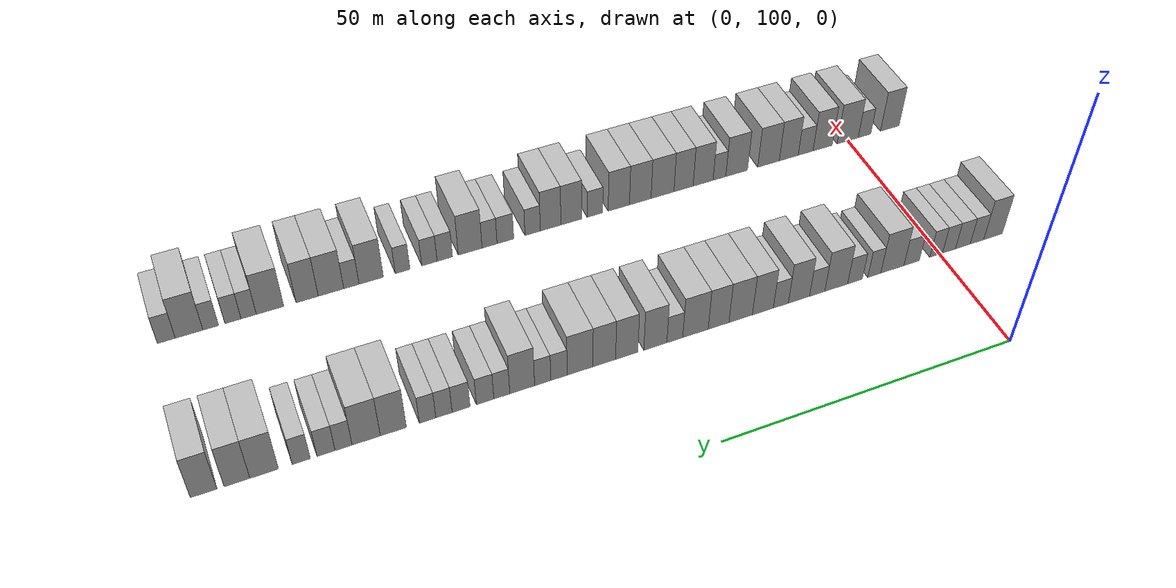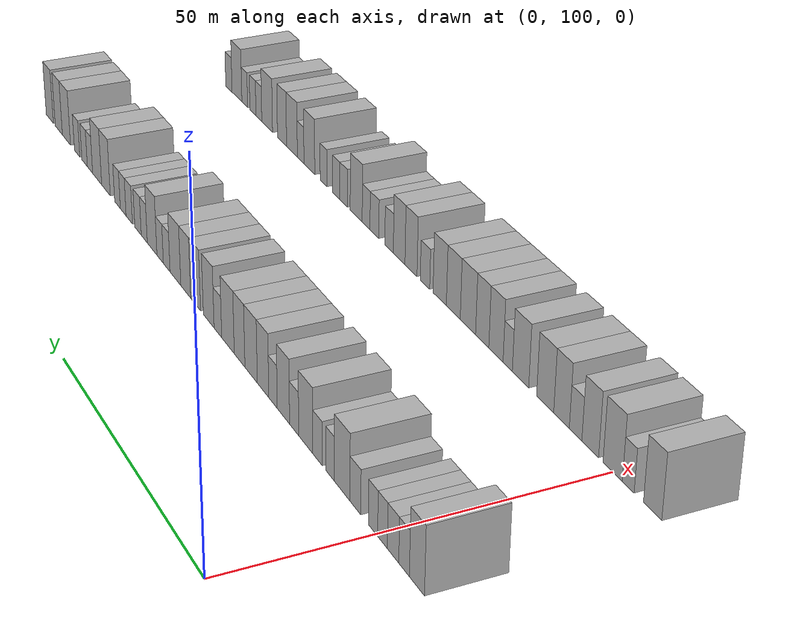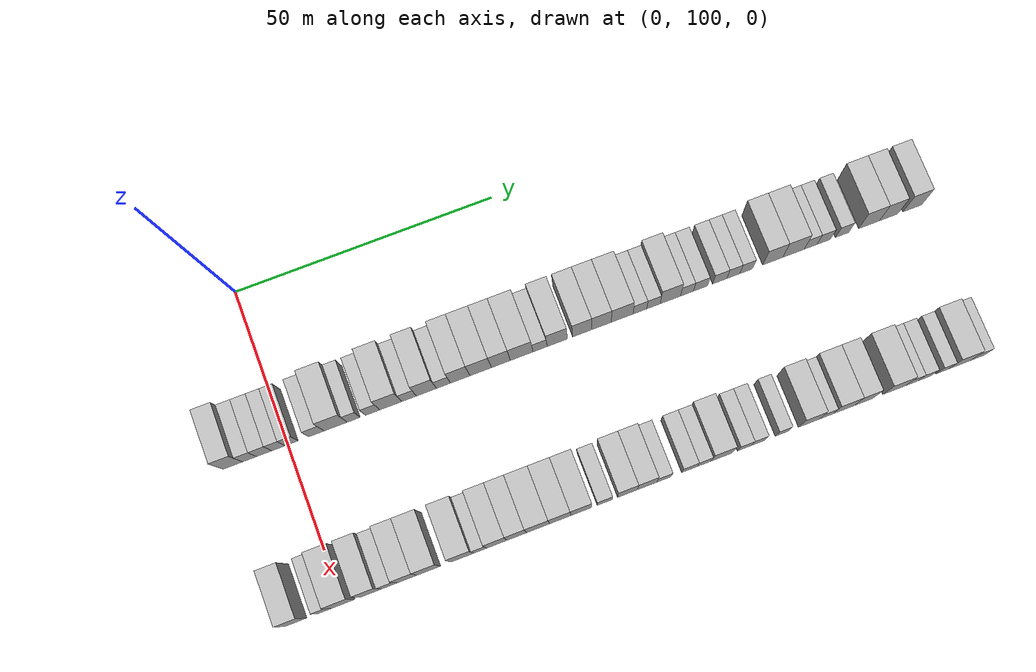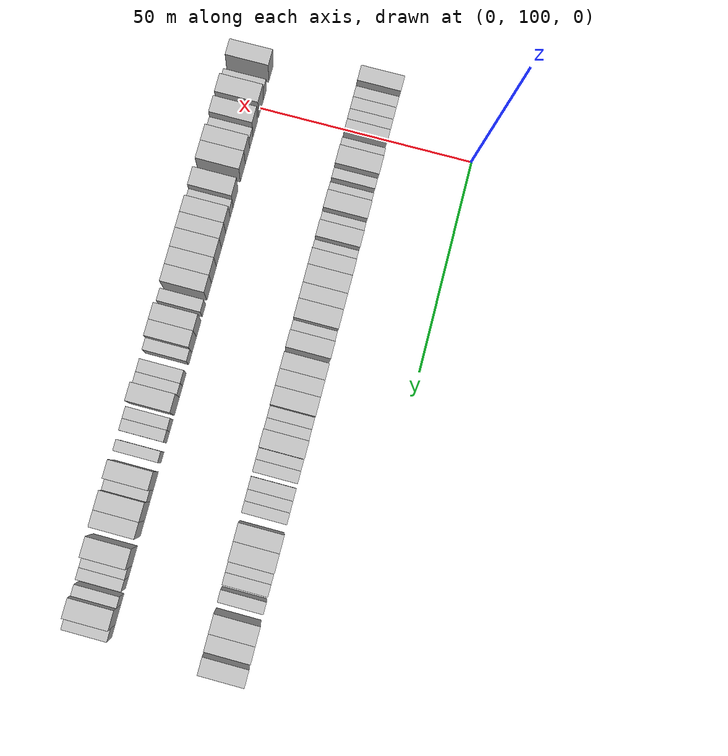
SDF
<sdf version="1.6">
 <world name="default">
  <model name="building_71">
   <static>1</static>
   <pose>25.0000 89.7215 0 0.000000 0.000000 0.000000</pose>
   <link name="link">
    <pose>0 0 4.50 0 0 0</pose>
    <collision name="collision"><geometry><box><size>10.0000 3.6614 9.0000</size></box></geometry></collision>
    <visual name="visual">
     <cast_shadows>0</cast_shadows>
     <geometry><box><size>10.0000 3.6614 9.0000</size></box></geometry>
     <material>
      <script>
       <uri>model://HANNAS_wall/materials/scripts</uri>
       <uri>model://HANNAS_wall/materials/textures</uri>
       <name>vrc/HANNAS_wall</name>
      </script>
     </material>
    </visual>
   </link>
  </model>
  <model name="building_72">
   <static>1</static>
   <pose>25.0000 92.8641 0 0.000000 0.000000 0.000000</pose>
   <link name="link">
    <pose>0 0 3.00 0 0 0</pose>
    <collision name="collision"><geometry><box><size>10.0000 2.6238 6.0000</size></box></geometry></collision>
    <visual name="visual">
     <cast_shadows>0</cast_shadows>
     <geometry><box><size>10.0000 2.6238 6.0000</size></box></geometry>
     <material>
      <script>
       <uri>model://HANNAS_wall/materials/scripts</uri>
       <uri>model://HANNAS_wall/materials/textures</uri>
       <name>vrc/HANNAS_wall</name>
      </script>
     </material>
    </visual>
   </link>
  </model>
  <model name="building_73">
   <static>1</static>
   <pose>25.0000 95.6105 0 0.000000 0.000000 0.000000</pose>
   <link name="link">
    <pose>0 0 3.00 0 0 0</pose>
    <collision name="collision"><geometry><box><size>10.0000 2.8688 6.0000</size></box></geometry></collision>
    <visual name="visual">
     <cast_shadows>0</cast_shadows>
     <geometry><box><size>10.0000 2.8688 6.0000</size></box></geometry>
     <material>
      <script>
       <uri>model://HANNAS_wall/materials/scripts</uri>
       <uri>model://HANNAS_wall/materials/textures</uri>
       <name>vrc/HANNAS_wall</name>
      </script>
     </material>
    </visual>
   </link>
  </model>
  <model name="building_74">
   <static>1</static>
   <pose>25.0000 98.2919 0 0.000000 0.000000 0.000000</pose>
   <link name="link">
    <pose>0 0 3.00 0 0 0</pose>
    <collision name="collision"><geometry><box><size>10.0000 2.4940 6.0000</size></box></geometry></collision>
    <visual name="visual">
     <cast_shadows>0</cast_shadows>
     <geometry><box><size>10.0000 2.4940 6.0000</size></box></geometry>
     <material>
      <script>
       <uri>model://HANNAS_wall/materials/scripts</uri>
       <uri>model://HANNAS_wall/materials/textures</uri>
       <name>vrc/HANNAS_wall</name>
      </script>
     </material>
    </visual>
   </link>
  </model>
  <model name="building_75">
   <static>1</static>
   <pose>25.0000 100.7658 0 0.000000 0.000000 0.000000</pose>
   <link name="link">
    <pose>0 0 3.00 0 0 0</pose>
    <collision name="collision"><geometry><box><size>10.0000 2.4537 6.0000</size></box></geometry></collision>
    <visual name="visual">
     <cast_shadows>0</cast_shadows>
     <geometry><box><size>10.0000 2.4537 6.0000</size></box></geometry>
     <material>
      <script>
       <uri>model://HANNAS_wall/materials/scripts</uri>
       <uri>model://HANNAS_wall/materials/textures</uri>
       <name>vrc/HANNAS_wall</name>
      </script>
     </material>
    </visual>
   </link>
  </model>
  <model name="building_76">
   <static>1</static>
   <pose>25.0000 105.4569 0 0.000000 0.000000 0.000000</pose>
   <link name="link">
    <pose>0 0 3.00 0 0 0</pose>
    <collision name="collision"><geometry><box><size>10.0000 2.9284 6.0000</size></box></geometry></collision>
    <visual name="visual">
     <cast_shadows>0</cast_shadows>
     <geometry><box><size>10.0000 2.9284 6.0000</size></box></geometry>
     <material>
      <script>
       <uri>model://HANNAS_wall/materials/scripts</uri>
       <uri>model://HANNAS_wall/materials/textures</uri>
       <name>vrc/HANNAS_wall</name>
      </script>
     </material>
    </visual>
   </link>
  </model>
  <model name="building_77">
   <static>1</static>
   <pose>25.0000 109.0968 0 0.000000 0.000000 0.000000</pose>
   <link name="link">
    <pose>0 0 4.50 0 0 0</pose>
    <collision name="collision"><geometry><box><size>10.0000 4.3515 9.0000</size></box></geometry></collision>
    <visual name="visual">
     <cast_shadows>0</cast_shadows>
     <geometry><box><size>10.0000 4.3515 9.0000</size></box></geometry>
     <material>
      <script>
       <uri>model://HANNAS_wall/materials/scripts</uri>
       <uri>model://HANNAS_wall/materials/textures</uri>
       <name>vrc/HANNAS_wall</name>
      </script>
     </material>
    </visual>
   </link>
  </model>
  <model name="building_78">
   <static>1</static>
   <pose>25.0000 112.4918 0 0.000000 0.000000 0.000000</pose>
   <link name="link">
    <pose>0 0 3.00 0 0 0</pose>
    <collision name="collision"><geometry><box><size>10.0000 2.4386 6.0000</size></box></geometry></collision>
    <visual name="visual">
     <cast_shadows>0</cast_shadows>
     <geometry><box><size>10.0000 2.4386 6.0000</size></box></geometry>
     <material>
      <script>
       <uri>model://HANNAS_wall/materials/scripts</uri>
       <uri>model://HANNAS_wall/materials/textures</uri>
       <name>vrc/HANNAS_wall</name>
      </script>
     </material>
    </visual>
   </link>
  </model>
  <model name="building_79">
   <static>1</static>
   <pose>25.0000 116.0793 0 0.000000 0.000000 0.000000</pose>
   <link name="link">
    <pose>0 0 3.00 0 0 0</pose>
    <collision name="collision"><geometry><box><size>10.0000 2.7364 6.0000</size></box></geometry></collision>
    <visual name="visual">
     <cast_shadows>0</cast_shadows>
     <geometry><box><size>10.0000 2.7364 6.0000</size></box></geometry>
     <material>
      <script>
       <uri>model://HANNAS_wall/materials/scripts</uri>
       <uri>model://HANNAS_wall/materials/textures</uri>
       <name>vrc/HANNAS_wall</name>
      </script>
     </material>
    </visual>
   </link>
  </model>
  <model name="building_80">
   <static>1</static>
   <pose>25.0000 119.5426 0 0.000000 0.000000 0.000000</pose>
   <link name="link">
    <pose>0 0 4.50 0 0 0</pose>
    <collision name="collision"><geometry><box><size>10.0000 4.1902 9.0000</size></box></geometry></collision>
    <visual name="visual">
     <cast_shadows>0</cast_shadows>
     <geometry><box><size>10.0000 4.1902 9.0000</size></box></geometry>
     <material>
      <script>
       <uri>model://HANNAS_wall/materials/scripts</uri>
       <uri>model://HANNAS_wall/materials/textures</uri>
       <name>vrc/HANNAS_wall</name>
      </script>
     </material>
    </visual>
   </link>
  </model>
  <model name="building_81">
   <static>1</static>
   <pose>25.0000 123.0339 0 0.000000 0.000000 0.000000</pose>
   <link name="link">
    <pose>0 0 3.00 0 0 0</pose>
    <collision name="collision"><geometry><box><size>10.0000 2.7923 6.0000</size></box></geometry></collision>
    <visual name="visual">
     <cast_shadows>0</cast_shadows>
     <geometry><box><size>10.0000 2.7923 6.0000</size></box></geometry>
     <material>
      <script>
       <uri>model://HANNAS_wall/materials/scripts</uri>
       <uri>model://HANNAS_wall/materials/textures</uri>
       <name>vrc/HANNAS_wall</name>
      </script>
     </material>
    </visual>
   </link>
  </model>
  <model name="building_82">
   <static>1</static>
   <pose>25.0000 126.3454 0 0.000000 0.000000 0.000000</pose>
   <link name="link">
    <pose>0 0 4.50 0 0 0</pose>
    <collision name="collision"><geometry><box><size>10.0000 3.8308 9.0000</size></box></geometry></collision>
    <visual name="visual">
     <cast_shadows>0</cast_shadows>
     <geometry><box><size>10.0000 3.8308 9.0000</size></box></geometry>
     <material>
      <script>
       <uri>model://HANNAS_wall/materials/scripts</uri>
       <uri>model://HANNAS_wall/materials/textures</uri>
       <name>vrc/HANNAS_wall</name>
      </script>
     </material>
    </visual>
   </link>
  </model>
  <model name="building_83">
   <static>1</static>
   <pose>25.0000 129.6016 0 0.000000 0.000000 0.000000</pose>
   <link name="link">
    <pose>0 0 3.00 0 0 0</pose>
    <collision name="collision"><geometry><box><size>10.0000 2.6816 6.0000</size></box></geometry></collision>
    <visual name="visual">
     <cast_shadows>0</cast_shadows>
     <geometry><box><size>10.0000 2.6816 6.0000</size></box></geometry>
     <material>
      <script>
       <uri>model://HANNAS_wall/materials/scripts</uri>
       <uri>model://HANNAS_wall/materials/textures</uri>
       <name>vrc/HANNAS_wall</name>
      </script>
     </material>
    </visual>
   </link>
  </model>
  <model name="building_84">
   <static>1</static>
   <pose>25.0000 132.8033 0 0.000000 0.000000 0.000000</pose>
   <link name="link">
    <pose>0 0 4.50 0 0 0</pose>
    <collision name="collision"><geometry><box><size>10.0000 3.7218 9.0000</size></box></geometry></collision>
    <visual name="visual">
     <cast_shadows>0</cast_shadows>
     <geometry><box><size>10.0000 3.7218 9.0000</size></box></geometry>
     <material>
      <script>
       <uri>model://HANNAS_wall/materials/scripts</uri>
       <uri>model://HANNAS_wall/materials/textures</uri>
       <name>vrc/HANNAS_wall</name>
      </script>
     </material>
    </visual>
   </link>
  </model>
  <model name="building_85">
   <static>1</static>
   <pose>25.0000 136.7309 0 0.000000 0.000000 0.000000</pose>
   <link name="link">
    <pose>0 0 4.50 0 0 0</pose>
    <collision name="collision"><geometry><box><size>10.0000 4.1333 9.0000</size></box></geometry></collision>
    <visual name="visual">
     <cast_shadows>0</cast_shadows>
     <geometry><box><size>10.0000 4.1333 9.0000</size></box></geometry>
     <material>
      <script>
       <uri>model://HANNAS_wall/materials/scripts</uri>
       <uri>model://HANNAS_wall/materials/textures</uri>
       <name>vrc/HANNAS_wall</name>
      </script>
     </material>
    </visual>
   </link>
  </model>
  <model name="building_86">
   <static>1</static>
   <pose>25.0000 140.6126 0 0.000000 0.000000 0.000000</pose>
   <link name="link">
    <pose>0 0 4.50 0 0 0</pose>
    <collision name="collision"><geometry><box><size>10.0000 3.6303 9.0000</size></box></geometry></collision>
    <visual name="visual">
     <cast_shadows>0</cast_shadows>
     <geometry><box><size>10.0000 3.6303 9.0000</size></box></geometry>
     <material>
      <script>
       <uri>model://HANNAS_wall/materials/scripts</uri>
       <uri>model://HANNAS_wall/materials/textures</uri>
       <name>vrc/HANNAS_wall</name>
      </script>
     </material>
    </visual>
   </link>
  </model>
  <model name="building_87">
   <static>1</static>
   <pose>25.0000 144.6227 0 0.000000 0.000000 0.000000</pose>
   <link name="link">
    <pose>0 0 4.50 0 0 0</pose>
    <collision name="collision"><geometry><box><size>10.0000 4.3898 9.0000</size></box></geometry></collision>
    <visual name="visual">
     <cast_shadows>0</cast_shadows>
     <geometry><box><size>10.0000 4.3898 9.0000</size></box></geometry>
     <material>
      <script>
       <uri>model://HANNAS_wall/materials/scripts</uri>
       <uri>model://HANNAS_wall/materials/textures</uri>
       <name>vrc/HANNAS_wall</name>
      </script>
     </material>
    </visual>
   </link>
  </model>
  <model name="building_88">
   <static>1</static>
   <pose>25.0000 148.1798 0 0.000000 0.000000 0.000000</pose>
   <link name="link">
    <pose>0 0 3.00 0 0 0</pose>
    <collision name="collision"><geometry><box><size>10.0000 2.7245 6.0000</size></box></geometry></collision>
    <visual name="visual">
     <cast_shadows>0</cast_shadows>
     <geometry><box><size>10.0000 2.7245 6.0000</size></box></geometry>
     <material>
      <script>
       <uri>model://HANNAS_wall/materials/scripts</uri>
       <uri>model://HANNAS_wall/materials/textures</uri>
       <name>vrc/HANNAS_wall</name>
      </script>
     </material>
    </visual>
   </link>
  </model>
  <model name="building_89">
   <static>1</static>
   <pose>25.0000 151.5009 0 0.000000 0.000000 0.000000</pose>
   <link name="link">
    <pose>0 0 4.50 0 0 0</pose>
    <collision name="collision"><geometry><box><size>10.0000 3.9177 9.0000</size></box></geometry></collision>
    <visual name="visual">
     <cast_shadows>0</cast_shadows>
     <geometry><box><size>10.0000 3.9177 9.0000</size></box></geometry>
     <material>
      <script>
       <uri>model://HANNAS_wall/materials/scripts</uri>
       <uri>model://HANNAS_wall/materials/textures</uri>
       <name>vrc/HANNAS_wall</name>
      </script>
     </material>
    </visual>
   </link>
  </model>
  <model name="building_90">
   <static>1</static>
   <pose>25.0000 156.3270 0 0.000000 0.000000 0.000000</pose>
   <link name="link">
    <pose>0 0 4.50 0 0 0</pose>
    <collision name="collision"><geometry><box><size>10.0000 3.7345 9.0000</size></box></geometry></collision>
    <visual name="visual">
     <cast_shadows>0</cast_shadows>
     <geometry><box><size>10.0000 3.7345 9.0000</size></box></geometry>
     <material>
      <script>
       <uri>model://HANNAS_wall/materials/scripts</uri>
       <uri>model://HANNAS_wall/materials/textures</uri>
       <name>vrc/HANNAS_wall</name>
      </script>
     </material>
    </visual>
   </link>
  </model>
  <model name="building_91">
   <static>1</static>
   <pose>25.0000 160.0814 0 0.000000 0.000000 0.000000</pose>
   <link name="link">
    <pose>0 0 4.50 0 0 0</pose>
    <collision name="collision"><geometry><box><size>10.0000 3.7743 9.0000</size></box></geometry></collision>
    <visual name="visual">
     <cast_shadows>0</cast_shadows>
     <geometry><box><size>10.0000 3.7743 9.0000</size></box></geometry>
     <material>
      <script>
       <uri>model://HANNAS_wall/materials/scripts</uri>
       <uri>model://HANNAS_wall/materials/textures</uri>
       <name>vrc/HANNAS_wall</name>
      </script>
     </material>
    </visual>
   </link>
  </model>
  <model name="building_92">
   <static>1</static>
   <pose>25.0000 164.0859 0 0.000000 0.000000 0.000000</pose>
   <link name="link">
    <pose>0 0 4.50 0 0 0</pose>
    <collision name="collision"><geometry><box><size>10.0000 4.2347 9.0000</size></box></geometry></collision>
    <visual name="visual">
     <cast_shadows>0</cast_shadows>
     <geometry><box><size>10.0000 4.2347 9.0000</size></box></geometry>
     <material>
      <script>
       <uri>model://HANNAS_wall/materials/scripts</uri>
       <uri>model://HANNAS_wall/materials/textures</uri>
       <name>vrc/HANNAS_wall</name>
      </script>
     </material>
    </visual>
   </link>
  </model>
  <model name="building_93">
   <static>1</static>
   <pose>25.0000 167.5419 0 0.000000 0.000000 0.000000</pose>
   <link name="link">
    <pose>0 0 3.00 0 0 0</pose>
    <collision name="collision"><geometry><box><size>10.0000 2.6774 6.0000</size></box></geometry></collision>
    <visual name="visual">
     <cast_shadows>0</cast_shadows>
     <geometry><box><size>10.0000 2.6774 6.0000</size></box></geometry>
     <material>
      <script>
       <uri>model://HANNAS_wall/materials/scripts</uri>
       <uri>model://HANNAS_wall/materials/textures</uri>
       <name>vrc/HANNAS_wall</name>
      </script>
     </material>
    </visual>
   </link>
  </model>
  <model name="building_94">
   <static>1</static>
   <pose>25.0000 170.1891 0 0.000000 0.000000 0.000000</pose>
   <link name="link">
    <pose>0 0 3.00 0 0 0</pose>
    <collision name="collision"><geometry><box><size>10.0000 2.6171 6.0000</size></box></geometry></collision>
    <visual name="visual">
     <cast_shadows>0</cast_shadows>
     <geometry><box><size>10.0000 2.6171 6.0000</size></box></geometry>
     <material>
      <script>
       <uri>model://HANNAS_wall/materials/scripts</uri>
       <uri>model://HANNAS_wall/materials/textures</uri>
       <name>vrc/HANNAS_wall</name>
      </script>
     </material>
    </visual>
   </link>
  </model>
  <model name="building_95">
   <static>1</static>
   <pose>25.0000 173.4944 0 0.000000 0.000000 0.000000</pose>
   <link name="link">
    <pose>0 0 4.50 0 0 0</pose>
    <collision name="collision"><geometry><box><size>10.0000 3.9935 9.0000</size></box></geometry></collision>
    <visual name="visual">
     <cast_shadows>0</cast_shadows>
     <geometry><box><size>10.0000 3.9935 9.0000</size></box></geometry>
     <material>
      <script>
       <uri>model://HANNAS_wall/materials/scripts</uri>
       <uri>model://HANNAS_wall/materials/textures</uri>
       <name>vrc/HANNAS_wall</name>
      </script>
     </material>
    </visual>
   </link>
  </model>
  <model name="building_96">
   <static>1</static>
   <pose>25.0000 176.7638 0 0.000000 0.000000 0.000000</pose>
   <link name="link">
    <pose>0 0 3.00 0 0 0</pose>
    <collision name="collision"><geometry><box><size>10.0000 2.5451 6.0000</size></box></geometry></collision>
    <visual name="visual">
     <cast_shadows>0</cast_shadows>
     <geometry><box><size>10.0000 2.5451 6.0000</size></box></geometry>
     <material>
      <script>
       <uri>model://HANNAS_wall/materials/scripts</uri>
       <uri>model://HANNAS_wall/materials/textures</uri>
       <name>vrc/HANNAS_wall</name>
      </script>
     </material>
    </visual>
   </link>
  </model>
  <model name="building_97">
   <static>1</static>
   <pose>25.0000 179.4166 0 0.000000 0.000000 0.000000</pose>
   <link name="link">
    <pose>0 0 3.00 0 0 0</pose>
    <collision name="collision"><geometry><box><size>10.0000 2.7605 6.0000</size></box></geometry></collision>
    <visual name="visual">
     <cast_shadows>0</cast_shadows>
     <geometry><box><size>10.0000 2.7605 6.0000</size></box></geometry>
     <material>
      <script>
       <uri>model://HANNAS_wall/materials/scripts</uri>
       <uri>model://HANNAS_wall/materials/textures</uri>
       <name>vrc/HANNAS_wall</name>
      </script>
     </material>
    </visual>
   </link>
  </model>
  <model name="building_98">
   <static>1</static>
   <pose>25.0000 183.1963 0 0.000000 0.000000 0.000000</pose>
   <link name="link">
    <pose>0 0 3.00 0 0 0</pose>
    <collision name="collision"><geometry><box><size>10.0000 2.7990 6.0000</size></box></geometry></collision>
    <visual name="visual">
     <cast_shadows>0</cast_shadows>
     <geometry><box><size>10.0000 2.7990 6.0000</size></box></geometry>
     <material>
      <script>
       <uri>model://HANNAS_wall/materials/scripts</uri>
       <uri>model://HANNAS_wall/materials/textures</uri>
       <name>vrc/HANNAS_wall</name>
      </script>
     </material>
    </visual>
   </link>
  </model>
  <model name="building_99">
   <static>1</static>
   <pose>25.0000 185.8635 0 0.000000 0.000000 0.000000</pose>
   <link name="link">
    <pose>0 0 3.00 0 0 0</pose>
    <collision name="collision"><geometry><box><size>10.0000 2.5354 6.0000</size></box></geometry></collision>
    <visual name="visual">
     <cast_shadows>0</cast_shadows>
     <geometry><box><size>10.0000 2.5354 6.0000</size></box></geometry>
     <material>
      <script>
       <uri>model://HANNAS_wall/materials/scripts</uri>
       <uri>model://HANNAS_wall/materials/textures</uri>
       <name>vrc/HANNAS_wall</name>
      </script>
     </material>
    </visual>
   </link>
  </model>
  <model name="building_100">
   <static>1</static>
   <pose>25.0000 188.4048 0 0.000000 0.000000 0.000000</pose>
   <link name="link">
    <pose>0 0 3.00 0 0 0</pose>
    <collision name="collision"><geometry><box><size>10.0000 2.5472 6.0000</size></box></geometry></collision>
    <visual name="visual">
     <cast_shadows>0</cast_shadows>
     <geometry><box><size>10.0000 2.5472 6.0000</size></box></geometry>
     <material>
      <script>
       <uri>model://HANNAS_wall/materials/scripts</uri>
       <uri>model://HANNAS_wall/materials/textures</uri>
       <name>vrc/HANNAS_wall</name>
      </script>
     </material>
    </visual>
   </link>
  </model>
  <model name="building_101">
   <static>1</static>
   <pose>25.0000 193.6667 0 0.000000 0.000000 0.000000</pose>
   <link name="link">
    <pose>0 0 4.50 0 0 0</pose>
    <collision name="collision"><geometry><box><size>10.0000 3.9764 9.0000</size></box></geometry></collision>
    <visual name="visual">
     <cast_shadows>0</cast_shadows>
     <geometry><box><size>10.0000 3.9764 9.0000</size></box></geometry>
     <material>
      <script>
       <uri>model://HANNAS_wall/materials/scripts</uri>
       <uri>model://HANNAS_wall/materials/textures</uri>
       <name>vrc/HANNAS_wall</name>
      </script>
     </material>
    </visual>
   </link>
  </model>
  <model name="building_102">
   <static>1</static>
   <pose>25.0000 197.7877 0 0.000000 0.000000 0.000000</pose>
   <link name="link">
    <pose>0 0 4.50 0 0 0</pose>
    <collision name="collision"><geometry><box><size>10.0000 4.2657 9.0000</size></box></geometry></collision>
    <visual name="visual">
     <cast_shadows>0</cast_shadows>
     <geometry><box><size>10.0000 4.2657 9.0000</size></box></geometry>
     <material>
      <script>
       <uri>model://HANNAS_wall/materials/scripts</uri>
       <uri>model://HANNAS_wall/materials/textures</uri>
       <name>vrc/HANNAS_wall</name>
      </script>
     </material>
    </visual>
   </link>
  </model>
  <model name="building_103">
   <static>1</static>
   <pose>25.0000 201.1918 0 0.000000 0.000000 0.000000</pose>
   <link name="link">
    <pose>0 0 3.00 0 0 0</pose>
    <collision name="collision"><geometry><box><size>10.0000 2.5424 6.0000</size></box></geometry></collision>
    <visual name="visual">
     <cast_shadows>0</cast_shadows>
     <geometry><box><size>10.0000 2.5424 6.0000</size></box></geometry>
     <material>
      <script>
       <uri>model://HANNAS_wall/materials/scripts</uri>
       <uri>model://HANNAS_wall/materials/textures</uri>
       <name>vrc/HANNAS_wall</name>
      </script>
     </material>
    </visual>
   </link>
  </model>
  <model name="building_104">
   <static>1</static>
   <pose>25.0000 203.8011 0 0.000000 0.000000 0.000000</pose>
   <link name="link">
    <pose>0 0 3.00 0 0 0</pose>
    <collision name="collision"><geometry><box><size>10.0000 2.6762 6.0000</size></box></geometry></collision>
    <visual name="visual">
     <cast_shadows>0</cast_shadows>
     <geometry><box><size>10.0000 2.6762 6.0000</size></box></geometry>
     <material>
      <script>
       <uri>model://HANNAS_wall/materials/scripts</uri>
       <uri>model://HANNAS_wall/materials/textures</uri>
       <name>vrc/HANNAS_wall</name>
      </script>
     </material>
    </visual>
   </link>
  </model>
  <model name="building_105">
   <static>1</static>
   <pose>25.0000 207.4703 0 0.000000 0.000000 0.000000</pose>
   <link name="link">
    <pose>0 0 3.00 0 0 0</pose>
    <collision name="collision"><geometry><box><size>10.0000 2.6621 6.0000</size></box></geometry></collision>
    <visual name="visual">
     <cast_shadows>0</cast_shadows>
     <geometry><box><size>10.0000 2.6621 6.0000</size></box></geometry>
     <material>
      <script>
       <uri>model://HANNAS_wall/materials/scripts</uri>
       <uri>model://HANNAS_wall/materials/textures</uri>
       <name>vrc/HANNAS_wall</name>
      </script>
     </material>
    </visual>
   </link>
  </model>
  <model name="building_106">
   <static>1</static>
   <pose>25.0000 212.8797 0 0.000000 0.000000 0.000000</pose>
   <link name="link">
    <pose>0 0 4.50 0 0 0</pose>
    <collision name="collision"><geometry><box><size>10.0000 4.1568 9.0000</size></box></geometry></collision>
    <visual name="visual">
     <cast_shadows>0</cast_shadows>
     <geometry><box><size>10.0000 4.1568 9.0000</size></box></geometry>
     <material>
      <script>
       <uri>model://HANNAS_wall/materials/scripts</uri>
       <uri>model://HANNAS_wall/materials/textures</uri>
       <name>vrc/HANNAS_wall</name>
      </script>
     </material>
    </visual>
   </link>
  </model>
  <model name="building_107">
   <static>1</static>
   <pose>25.0000 216.8110 0 0.000000 0.000000 0.000000</pose>
   <link name="link">
    <pose>0 0 4.50 0 0 0</pose>
    <collision name="collision"><geometry><box><size>10.0000 3.7057 9.0000</size></box></geometry></collision>
    <visual name="visual">
     <cast_shadows>0</cast_shadows>
     <geometry><box><size>10.0000 3.7057 9.0000</size></box></geometry>
     <material>
      <script>
       <uri>model://HANNAS_wall/materials/scripts</uri>
       <uri>model://HANNAS_wall/materials/textures</uri>
       <name>vrc/HANNAS_wall</name>
      </script>
     </material>
    </visual>
   </link>
  </model>
  <model name="building_108">
   <static>1</static>
   <pose>25.0000 221.5571 0 0.000000 0.000000 0.000000</pose>
   <link name="link">
    <pose>0 0 4.50 0 0 0</pose>
    <collision name="collision"><geometry><box><size>10.0000 3.7865 9.0000</size></box></geometry></collision>
    <visual name="visual">
     <cast_shadows>0</cast_shadows>
     <geometry><box><size>10.0000 3.7865 9.0000</size></box></geometry>
     <material>
      <script>
       <uri>model://HANNAS_wall/materials/scripts</uri>
       <uri>model://HANNAS_wall/materials/textures</uri>
       <name>vrc/HANNAS_wall</name>
      </script>
     </material>
    </visual>
   </link>
  </model>
  <model name="building_182">
   <static>1</static>
   <pose>55.0000 91.4218 0 0.000000 0.000000 0.000000</pose>
   <link name="link">
    <pose>0 0 4.50 0 0 0</pose>
    <collision name="collision"><geometry><box><size>10.0000 3.8632 9.0000</size></box></geometry></collision>
    <visual name="visual">
     <cast_shadows>0</cast_shadows>
     <geometry><box><size>10.0000 3.8632 9.0000</size></box></geometry>
     <material>
      <script>
       <uri>model://HANNAS_wall/materials/scripts</uri>
       <uri>model://HANNAS_wall/materials/textures</uri>
       <name>vrc/HANNAS_wall</name>
      </script>
     </material>
    </visual>
   </link>
  </model>
  <model name="building_183">
   <static>1</static>
   <pose>55.0000 96.6444 0 0.000000 0.000000 0.000000</pose>
   <link name="link">
    <pose>0 0 3.00 0 0 0</pose>
    <collision name="collision"><geometry><box><size>10.0000 2.5818 6.0000</size></box></geometry></collision>
    <visual name="visual">
     <cast_shadows>0</cast_shadows>
     <geometry><box><size>10.0000 2.5818 6.0000</size></box></geometry>
     <material>
      <script>
       <uri>model://HANNAS_wall/materials/scripts</uri>
       <uri>model://HANNAS_wall/materials/textures</uri>
       <name>vrc/HANNAS_wall</name>
      </script>
     </material>
    </visual>
   </link>
  </model>
  <model name="building_184">
   <static>1</static>
   <pose>55.0000 100.0978 0 0.000000 0.000000 0.000000</pose>
   <link name="link">
    <pose>0 0 4.50 0 0 0</pose>
    <collision name="collision"><geometry><box><size>10.0000 4.3250 9.0000</size></box></geometry></collision>
    <visual name="visual">
     <cast_shadows>0</cast_shadows>
     <geometry><box><size>10.0000 4.3250 9.0000</size></box></geometry>
     <material>
      <script>
       <uri>model://HANNAS_wall/materials/scripts</uri>
       <uri>model://HANNAS_wall/materials/textures</uri>
       <name>vrc/HANNAS_wall</name>
      </script>
     </material>
    </visual>
   </link>
  </model>
  <model name="building_185">
   <static>1</static>
   <pose>55.0000 105.2019 0 0.000000 0.000000 0.000000</pose>
   <link name="link">
    <pose>0 0 4.50 0 0 0</pose>
    <collision name="collision"><geometry><box><size>10.0000 3.8833 9.0000</size></box></geometry></collision>
    <visual name="visual">
     <cast_shadows>0</cast_shadows>
     <geometry><box><size>10.0000 3.8833 9.0000</size></box></geometry>
     <material>
      <script>
       <uri>model://HANNAS_wall/materials/scripts</uri>
       <uri>model://HANNAS_wall/materials/textures</uri>
       <name>vrc/HANNAS_wall</name>
      </script>
     </material>
    </visual>
   </link>
  </model>
  <model name="building_186">
   <static>1</static>
   <pose>55.0000 108.6308 0 0.000000 0.000000 0.000000</pose>
   <link name="link">
    <pose>0 0 3.00 0 0 0</pose>
    <collision name="collision"><geometry><box><size>10.0000 2.9743 6.0000</size></box></geometry></collision>
    <visual name="visual">
     <cast_shadows>0</cast_shadows>
     <geometry><box><size>10.0000 2.9743 6.0000</size></box></geometry>
     <material>
      <script>
       <uri>model://HANNAS_wall/materials/scripts</uri>
       <uri>model://HANNAS_wall/materials/textures</uri>
       <name>vrc/HANNAS_wall</name>
      </script>
     </material>
    </visual>
   </link>
  </model>
  <model name="building_187">
   <static>1</static>
   <pose>55.0000 112.0051 0 0.000000 0.000000 0.000000</pose>
   <link name="link">
    <pose>0 0 4.50 0 0 0</pose>
    <collision name="collision"><geometry><box><size>10.0000 3.7743 9.0000</size></box></geometry></collision>
    <visual name="visual">
     <cast_shadows>0</cast_shadows>
     <geometry><box><size>10.0000 3.7743 9.0000</size></box></geometry>
     <material>
      <script>
       <uri>model://HANNAS_wall/materials/scripts</uri>
       <uri>model://HANNAS_wall/materials/textures</uri>
       <name>vrc/HANNAS_wall</name>
      </script>
     </material>
    </visual>
   </link>
  </model>
  <model name="building_188">
   <static>1</static>
   <pose>55.0000 116.0186 0 0.000000 0.000000 0.000000</pose>
   <link name="link">
    <pose>0 0 4.50 0 0 0</pose>
    <collision name="collision"><geometry><box><size>10.0000 4.2528 9.0000</size></box></geometry></collision>
    <visual name="visual">
     <cast_shadows>0</cast_shadows>
     <geometry><box><size>10.0000 4.2528 9.0000</size></box></geometry>
     <material>
      <script>
       <uri>model://HANNAS_wall/materials/scripts</uri>
       <uri>model://HANNAS_wall/materials/textures</uri>
       <name>vrc/HANNAS_wall</name>
      </script>
     </material>
    </visual>
   </link>
  </model>
  <model name="building_189">
   <static>1</static>
   <pose>55.0000 122.2617 0 0.000000 0.000000 0.000000</pose>
   <link name="link">
    <pose>0 0 4.50 0 0 0</pose>
    <collision name="collision"><geometry><box><size>10.0000 4.2333 9.0000</size></box></geometry></collision>
    <visual name="visual">
     <cast_shadows>0</cast_shadows>
     <geometry><box><size>10.0000 4.2333 9.0000</size></box></geometry>
     <material>
      <script>
       <uri>model://HANNAS_wall/materials/scripts</uri>
       <uri>model://HANNAS_wall/materials/textures</uri>
       <name>vrc/HANNAS_wall</name>
      </script>
     </material>
    </visual>
   </link>
  </model>
  <model name="building_190">
   <static>1</static>
   <pose>55.0000 125.6044 0 0.000000 0.000000 0.000000</pose>
   <link name="link">
    <pose>0 0 3.00 0 0 0</pose>
    <collision name="collision"><geometry><box><size>10.0000 2.4521 6.0000</size></box></geometry></collision>
    <visual name="visual">
     <cast_shadows>0</cast_shadows>
     <geometry><box><size>10.0000 2.4521 6.0000</size></box></geometry>
     <material>
      <script>
       <uri>model://HANNAS_wall/materials/scripts</uri>
       <uri>model://HANNAS_wall/materials/textures</uri>
       <name>vrc/HANNAS_wall</name>
      </script>
     </material>
    </visual>
   </link>
  </model>
  <model name="building_191">
   <static>1</static>
   <pose>55.0000 128.7505 0 0.000000 0.000000 0.000000</pose>
   <link name="link">
    <pose>0 0 4.50 0 0 0</pose>
    <collision name="collision"><geometry><box><size>10.0000 3.8402 9.0000</size></box></geometry></collision>
    <visual name="visual">
     <cast_shadows>0</cast_shadows>
     <geometry><box><size>10.0000 3.8402 9.0000</size></box></geometry>
     <material>
      <script>
       <uri>model://HANNAS_wall/materials/scripts</uri>
       <uri>model://HANNAS_wall/materials/textures</uri>
       <name>vrc/HANNAS_wall</name>
      </script>
     </material>
    </visual>
   </link>
  </model>
  <model name="building_192">
   <static>1</static>
   <pose>55.0000 132.4935 0 0.000000 0.000000 0.000000</pose>
   <link name="link">
    <pose>0 0 4.50 0 0 0</pose>
    <collision name="collision"><geometry><box><size>10.0000 3.6457 9.0000</size></box></geometry></collision>
    <visual name="visual">
     <cast_shadows>0</cast_shadows>
     <geometry><box><size>10.0000 3.6457 9.0000</size></box></geometry>
     <material>
      <script>
       <uri>model://HANNAS_wall/materials/scripts</uri>
       <uri>model://HANNAS_wall/materials/textures</uri>
       <name>vrc/HANNAS_wall</name>
      </script>
     </material>
    </visual>
   </link>
  </model>
  <model name="building_193">
   <static>1</static>
   <pose>55.0000 136.4798 0 0.000000 0.000000 0.000000</pose>
   <link name="link">
    <pose>0 0 4.50 0 0 0</pose>
    <collision name="collision"><geometry><box><size>10.0000 4.3269 9.0000</size></box></geometry></collision>
    <visual name="visual">
     <cast_shadows>0</cast_shadows>
     <geometry><box><size>10.0000 4.3269 9.0000</size></box></geometry>
     <material>
      <script>
       <uri>model://HANNAS_wall/materials/scripts</uri>
       <uri>model://HANNAS_wall/materials/textures</uri>
       <name>vrc/HANNAS_wall</name>
      </script>
     </material>
    </visual>
   </link>
  </model>
  <model name="building_194">
   <static>1</static>
   <pose>55.0000 140.6579 0 0.000000 0.000000 0.000000</pose>
   <link name="link">
    <pose>0 0 4.50 0 0 0</pose>
    <collision name="collision"><geometry><box><size>10.0000 4.0294 9.0000</size></box></geometry></collision>
    <visual name="visual">
     <cast_shadows>0</cast_shadows>
     <geometry><box><size>10.0000 4.0294 9.0000</size></box></geometry>
     <material>
      <script>
       <uri>model://HANNAS_wall/materials/scripts</uri>
       <uri>model://HANNAS_wall/materials/textures</uri>
       <name>vrc/HANNAS_wall</name>
      </script>
     </material>
    </visual>
   </link>
  </model>
  <model name="building_195">
   <static>1</static>
   <pose>55.0000 144.6463 0 0.000000 0.000000 0.000000</pose>
   <link name="link">
    <pose>0 0 4.50 0 0 0</pose>
    <collision name="collision"><geometry><box><size>10.0000 3.9474 9.0000</size></box></geometry></collision>
    <visual name="visual">
     <cast_shadows>0</cast_shadows>
     <geometry><box><size>10.0000 3.9474 9.0000</size></box></geometry>
     <material>
      <script>
       <uri>model://HANNAS_wall/materials/scripts</uri>
       <uri>model://HANNAS_wall/materials/textures</uri>
       <name>vrc/HANNAS_wall</name>
      </script>
     </material>
    </visual>
   </link>
  </model>
  <model name="building_196">
   <static>1</static>
   <pose>55.0000 149.0551 0 0.000000 0.000000 0.000000</pose>
   <link name="link">
    <pose>0 0 3.00 0 0 0</pose>
    <collision name="collision"><geometry><box><size>10.0000 2.8704 6.0000</size></box></geometry></collision>
    <visual name="visual">
     <cast_shadows>0</cast_shadows>
     <geometry><box><size>10.0000 2.8704 6.0000</size></box></geometry>
     <material>
      <script>
       <uri>model://HANNAS_wall/materials/scripts</uri>
       <uri>model://HANNAS_wall/materials/textures</uri>
       <name>vrc/HANNAS_wall</name>
      </script>
     </material>
    </visual>
   </link>
  </model>
  <model name="building_197">
   <static>1</static>
   <pose>55.0000 153.3674 0 0.000000 0.000000 0.000000</pose>
   <link name="link">
    <pose>0 0 4.50 0 0 0</pose>
    <collision name="collision"><geometry><box><size>10.0000 3.7542 9.0000</size></box></geometry></collision>
    <visual name="visual">
     <cast_shadows>0</cast_shadows>
     <geometry><box><size>10.0000 3.7542 9.0000</size></box></geometry>
     <material>
      <script>
       <uri>model://HANNAS_wall/materials/scripts</uri>
       <uri>model://HANNAS_wall/materials/textures</uri>
       <name>vrc/HANNAS_wall</name>
      </script>
     </material>
    </visual>
   </link>
  </model>
  <model name="building_198">
   <static>1</static>
   <pose>55.0000 157.0973 0 0.000000 0.000000 0.000000</pose>
   <link name="link">
    <pose>0 0 4.50 0 0 0</pose>
    <collision name="collision"><geometry><box><size>10.0000 3.7055 9.0000</size></box></geometry></collision>
    <visual name="visual">
     <cast_shadows>0</cast_shadows>
     <geometry><box><size>10.0000 3.7055 9.0000</size></box></geometry>
     <material>
      <script>
       <uri>model://HANNAS_wall/materials/scripts</uri>
       <uri>model://HANNAS_wall/materials/textures</uri>
       <name>vrc/HANNAS_wall</name>
      </script>
     </material>
    </visual>
   </link>
  </model>
  <model name="building_199">
   <static>1</static>
   <pose>55.0000 160.3266 0 0.000000 0.000000 0.000000</pose>
   <link name="link">
    <pose>0 0 3.00 0 0 0</pose>
    <collision name="collision"><geometry><box><size>10.0000 2.7530 6.0000</size></box></geometry></collision>
    <visual name="visual">
     <cast_shadows>0</cast_shadows>
     <geometry><box><size>10.0000 2.7530 6.0000</size></box></geometry>
     <material>
      <script>
       <uri>model://HANNAS_wall/materials/scripts</uri>
       <uri>model://HANNAS_wall/materials/textures</uri>
       <name>vrc/HANNAS_wall</name>
      </script>
     </material>
    </visual>
   </link>
  </model>
  <model name="building_200">
   <static>1</static>
   <pose>55.0000 165.1738 0 0.000000 0.000000 0.000000</pose>
   <link name="link">
    <pose>0 0 3.00 0 0 0</pose>
    <collision name="collision"><geometry><box><size>10.0000 2.9414 6.0000</size></box></geometry></collision>
    <visual name="visual">
     <cast_shadows>0</cast_shadows>
     <geometry><box><size>10.0000 2.9414 6.0000</size></box></geometry>
     <material>
      <script>
       <uri>model://HANNAS_wall/materials/scripts</uri>
       <uri>model://HANNAS_wall/materials/textures</uri>
       <name>vrc/HANNAS_wall</name>
      </script>
     </material>
    </visual>
   </link>
  </model>
  <model name="building_201">
   <static>1</static>
   <pose>55.0000 167.9584 0 0.000000 0.000000 0.000000</pose>
   <link name="link">
    <pose>0 0 3.00 0 0 0</pose>
    <collision name="collision"><geometry><box><size>10.0000 2.6279 6.0000</size></box></geometry></collision>
    <visual name="visual">
     <cast_shadows>0</cast_shadows>
     <geometry><box><size>10.0000 2.6279 6.0000</size></box></geometry>
     <material>
      <script>
       <uri>model://HANNAS_wall/materials/scripts</uri>
       <uri>model://HANNAS_wall/materials/textures</uri>
       <name>vrc/HANNAS_wall</name>
      </script>
     </material>
    </visual>
   </link>
  </model>
  <model name="building_202">
   <static>1</static>
   <pose>55.0000 171.3453 0 0.000000 0.000000 0.000000</pose>
   <link name="link">
    <pose>0 0 4.50 0 0 0</pose>
    <collision name="collision"><geometry><box><size>10.0000 4.1458 9.0000</size></box></geometry></collision>
    <visual name="visual">
     <cast_shadows>0</cast_shadows>
     <geometry><box><size>10.0000 4.1458 9.0000</size></box></geometry>
     <material>
      <script>
       <uri>model://HANNAS_wall/materials/scripts</uri>
       <uri>model://HANNAS_wall/materials/textures</uri>
       <name>vrc/HANNAS_wall</name>
      </script>
     </material>
    </visual>
   </link>
  </model>
  <model name="building_203">
   <static>1</static>
   <pose>55.0000 175.7478 0 0.000000 0.000000 0.000000</pose>
   <link name="link">
    <pose>0 0 3.00 0 0 0</pose>
    <collision name="collision"><geometry><box><size>10.0000 2.6594 6.0000</size></box></geometry></collision>
    <visual name="visual">
     <cast_shadows>0</cast_shadows>
     <geometry><box><size>10.0000 2.6594 6.0000</size></box></geometry>
     <material>
      <script>
       <uri>model://HANNAS_wall/materials/scripts</uri>
       <uri>model://HANNAS_wall/materials/textures</uri>
       <name>vrc/HANNAS_wall</name>
      </script>
     </material>
    </visual>
   </link>
  </model>
  <model name="building_204">
   <static>1</static>
   <pose>55.0000 178.3940 0 0.000000 0.000000 0.000000</pose>
   <link name="link">
    <pose>0 0 3.00 0 0 0</pose>
    <collision name="collision"><geometry><box><size>10.0000 2.6329 6.0000</size></box></geometry></collision>
    <visual name="visual">
     <cast_shadows>0</cast_shadows>
     <geometry><box><size>10.0000 2.6329 6.0000</size></box></geometry>
     <material>
      <script>
       <uri>model://HANNAS_wall/materials/scripts</uri>
       <uri>model://HANNAS_wall/materials/textures</uri>
       <name>vrc/HANNAS_wall</name>
      </script>
     </material>
    </visual>
   </link>
  </model>
  <model name="building_205">
   <static>1</static>
   <pose>55.0000 182.9602 0 0.000000 0.000000 0.000000</pose>
   <link name="link">
    <pose>0 0 3.00 0 0 0</pose>
    <collision name="collision"><geometry><box><size>10.0000 2.4994 6.0000</size></box></geometry></collision>
    <visual name="visual">
     <cast_shadows>0</cast_shadows>
     <geometry><box><size>10.0000 2.4994 6.0000</size></box></geometry>
     <material>
      <script>
       <uri>model://HANNAS_wall/materials/scripts</uri>
       <uri>model://HANNAS_wall/materials/textures</uri>
       <name>vrc/HANNAS_wall</name>
      </script>
     </material>
    </visual>
   </link>
  </model>
  <model name="building_206">
   <static>1</static>
   <pose>55.0000 188.2474 0 0.000000 0.000000 0.000000</pose>
   <link name="link">
    <pose>0 0 4.50 0 0 0</pose>
    <collision name="collision"><geometry><box><size>10.0000 4.0749 9.0000</size></box></geometry></collision>
    <visual name="visual">
     <cast_shadows>0</cast_shadows>
     <geometry><box><size>10.0000 4.0749 9.0000</size></box></geometry>
     <material>
      <script>
       <uri>model://HANNAS_wall/materials/scripts</uri>
       <uri>model://HANNAS_wall/materials/textures</uri>
       <name>vrc/HANNAS_wall</name>
      </script>
     </material>
    </visual>
   </link>
  </model>
  <model name="building_207">
   <static>1</static>
   <pose>55.0000 191.5535 0 0.000000 0.000000 0.000000</pose>
   <link name="link">
    <pose>0 0 3.00 0 0 0</pose>
    <collision name="collision"><geometry><box><size>10.0000 2.5375 6.0000</size></box></geometry></collision>
    <visual name="visual">
     <cast_shadows>0</cast_shadows>
     <geometry><box><size>10.0000 2.5375 6.0000</size></box></geometry>
     <material>
      <script>
       <uri>model://HANNAS_wall/materials/scripts</uri>
       <uri>model://HANNAS_wall/materials/textures</uri>
       <name>vrc/HANNAS_wall</name>
      </script>
     </material>
    </visual>
   </link>
  </model>
  <model name="building_208">
   <static>1</static>
   <pose>55.0000 194.9297 0 0.000000 0.000000 0.000000</pose>
   <link name="link">
    <pose>0 0 4.50 0 0 0</pose>
    <collision name="collision"><geometry><box><size>10.0000 4.2149 9.0000</size></box></geometry></collision>
    <visual name="visual">
     <cast_shadows>0</cast_shadows>
     <geometry><box><size>10.0000 4.2149 9.0000</size></box></geometry>
     <material>
      <script>
       <uri>model://HANNAS_wall/materials/scripts</uri>
       <uri>model://HANNAS_wall/materials/textures</uri>
       <name>vrc/HANNAS_wall</name>
      </script>
     </material>
    </visual>
   </link>
  </model>
  <model name="building_209">
   <static>1</static>
   <pose>55.0000 198.8452 0 0.000000 0.000000 0.000000</pose>
   <link name="link">
    <pose>0 0 4.50 0 0 0</pose>
    <collision name="collision"><geometry><box><size>10.0000 3.6161 9.0000</size></box></geometry></collision>
    <visual name="visual">
     <cast_shadows>0</cast_shadows>
     <geometry><box><size>10.0000 3.6161 9.0000</size></box></geometry>
     <material>
      <script>
       <uri>model://HANNAS_wall/materials/scripts</uri>
       <uri>model://HANNAS_wall/materials/textures</uri>
       <name>vrc/HANNAS_wall</name>
      </script>
     </material>
    </visual>
   </link>
  </model>
  <model name="building_210">
   <static>1</static>
   <pose>55.0000 204.8640 0 0.000000 0.000000 0.000000</pose>
   <link name="link">
    <pose>0 0 4.50 0 0 0</pose>
    <collision name="collision"><geometry><box><size>10.0000 4.4215 9.0000</size></box></geometry></collision>
    <visual name="visual">
     <cast_shadows>0</cast_shadows>
     <geometry><box><size>10.0000 4.4215 9.0000</size></box></geometry>
     <material>
      <script>
       <uri>model://HANNAS_wall/materials/scripts</uri>
       <uri>model://HANNAS_wall/materials/textures</uri>
       <name>vrc/HANNAS_wall</name>
      </script>
     </material>
    </visual>
   </link>
  </model>
  <model name="building_211">
   <static>1</static>
   <pose>55.0000 208.2895 0 0.000000 0.000000 0.000000</pose>
   <link name="link">
    <pose>0 0 3.00 0 0 0</pose>
    <collision name="collision"><geometry><box><size>10.0000 2.4293 6.0000</size></box></geometry></collision>
    <visual name="visual">
     <cast_shadows>0</cast_shadows>
     <geometry><box><size>10.0000 2.4293 6.0000</size></box></geometry>
     <material>
      <script>
       <uri>model://HANNAS_wall/materials/scripts</uri>
       <uri>model://HANNAS_wall/materials/textures</uri>
       <name>vrc/HANNAS_wall</name>
      </script>
     </material>
    </visual>
   </link>
  </model>
  <model name="building_212">
   <static>1</static>
   <pose>55.0000 210.7860 0 0.000000 0.000000 0.000000</pose>
   <link name="link">
    <pose>0 0 3.00 0 0 0</pose>
    <collision name="collision"><geometry><box><size>10.0000 2.5638 6.0000</size></box></geometry></collision>
    <visual name="visual">
     <cast_shadows>0</cast_shadows>
     <geometry><box><size>10.0000 2.5638 6.0000</size></box></geometry>
     <material>
      <script>
       <uri>model://HANNAS_wall/materials/scripts</uri>
       <uri>model://HANNAS_wall/materials/textures</uri>
       <name>vrc/HANNAS_wall</name>
      </script>
     </material>
    </visual>
   </link>
  </model>
  <model name="building_213">
   <static>1</static>
   <pose>55.0000 214.2991 0 0.000000 0.000000 0.000000</pose>
   <link name="link">
    <pose>0 0 3.00 0 0 0</pose>
    <collision name="collision"><geometry><box><size>10.0000 2.4624 6.0000</size></box></geometry></collision>
    <visual name="visual">
     <cast_shadows>0</cast_shadows>
     <geometry><box><size>10.0000 2.4624 6.0000</size></box></geometry>
     <material>
      <script>
       <uri>model://HANNAS_wall/materials/scripts</uri>
       <uri>model://HANNAS_wall/materials/textures</uri>
       <name>vrc/HANNAS_wall</name>
      </script>
     </material>
    </visual>
   </link>
  </model>
  <model name="building_214">
   <static>1</static>
   <pose>55.0000 217.6780 0 0.000000 0.000000 0.000000</pose>
   <link name="link">
    <pose>0 0 4.50 0 0 0</pose>
    <collision name="collision"><geometry><box><size>10.0000 4.2953 9.0000</size></box></geometry></collision>
    <visual name="visual">
     <cast_shadows>0</cast_shadows>
     <geometry><box><size>10.0000 4.2953 9.0000</size></box></geometry>
     <material>
      <script>
       <uri>model://HANNAS_wall/materials/scripts</uri>
       <uri>model://HANNAS_wall/materials/textures</uri>
       <name>vrc/HANNAS_wall</name>
      </script>
     </material>
    </visual>
   </link>
  </model>
  <model name="building_215">
   <static>1</static>
   <pose>55.0000 221.2164 0 0.000000 0.000000 0.000000</pose>
   <link name="link">
    <pose>0 0 3.00 0 0 0</pose>
    <collision name="collision"><geometry><box><size>10.0000 2.7814 6.0000</size></box></geometry></collision>
    <visual name="visual">
     <cast_shadows>0</cast_shadows>
     <geometry><box><size>10.0000 2.7814 6.0000</size></box></geometry>
     <material>
      <script>
       <uri>model://HANNAS_wall/materials/scripts</uri>
       <uri>model://HANNAS_wall/materials/textures</uri>
       <name>vrc/HANNAS_wall</name>
      </script>
     </material>
    </visual>
   </link>
  </model>
 </world>
</sdf>
